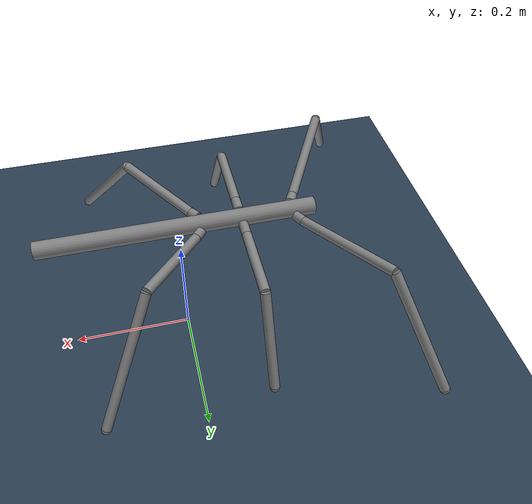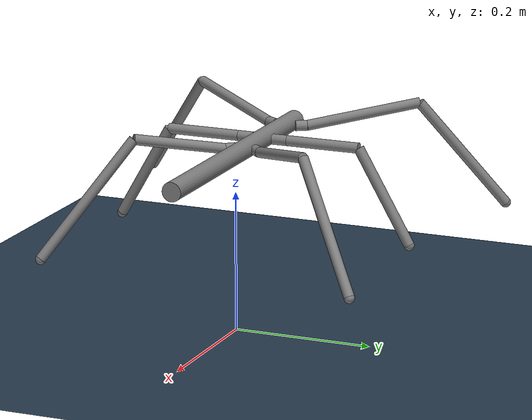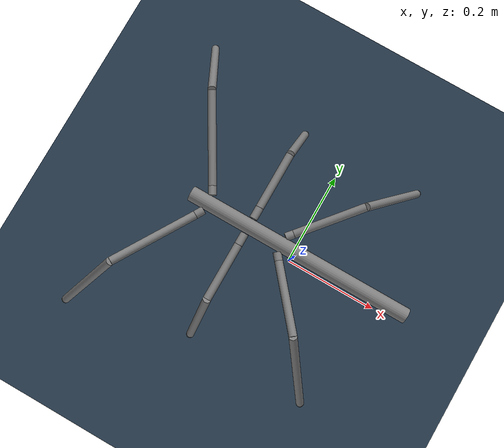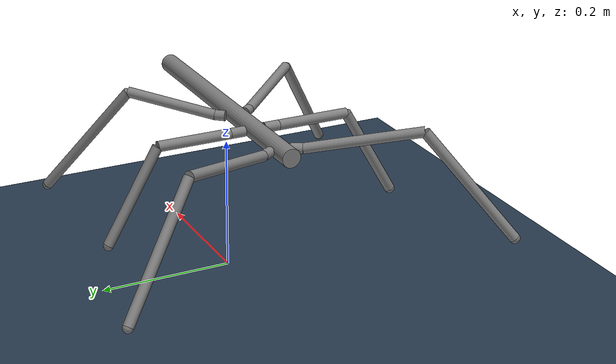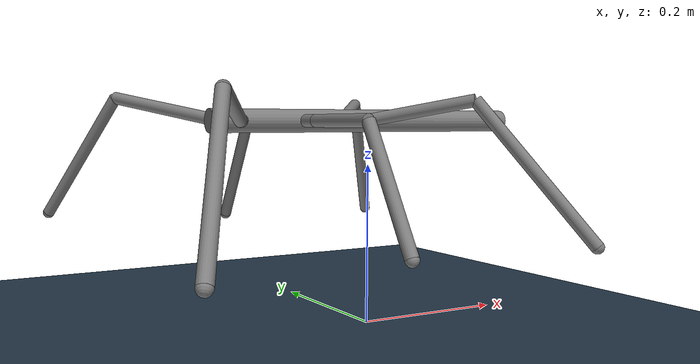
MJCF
<mujoco>
    <compiler meshdir="asset" texturedir="asset" />
    <statistic extent="1.5" meansize=".05" />

    <option timestep="0.005" jacobian="sparse" />

    <visual>
        <rgba haze="0.15 0.25 0.35 1" />
        <quality shadowsize="4096" />
        <map stiffness="700" shadowscale="0.5" fogstart="10" fogend="15" zfar="40" haze="0.3" />
    </visual>

    <asset>
        <texture type="skybox" builtin="gradient" rgb1="0.3 0.5 0.7" rgb2="0 0 0" width="512"
            height="512" />
        <texture name="texplane" type="2d" builtin="checker" rgb1=".2 .3 .4" rgb2=".1 0.15 0.2"
            width="512" height="512" mark="cross" markrgb=".8 .8 .8" />
        <material name="matplane" reflectance="0.3" texture="texplane" texrepeat="1 1"
            texuniform="true" />
    </asset>

    <worldbody>
        <body name="stick_insect_robot" pos="0 0 .03">
            <freejoint name="space" />
            <inertial pos="0.004237 -0.007339 0" mass="0.253323"
                diaginertia="0.01521 0.01521 9.453e-05" />

            <geom name="Stick_insect" size="0.01375 0.21325" pos="0 0 0.225002"
                quat="-0.5 -0.5 0.5 0.5"
                type="cylinder" contype="0" conaffinity="0" />
            <body name="COXA_R0" pos="-0.17975 0.014997 0.225" quat="0 1.73205e-07 3.26795e-07 1">
                <inertial pos="0.004237 -0.007339 0" mass="0.1"
                    diaginertia="0.00128 0.00128 0.00064" />
                <joint name="TR0" pos="0 0 0" axis="0 0 1" range="-1.74533 0.698132"
                    actuatorfrcrange="-6e+09 6e+09" />
                <geom name="COXA_R0" size="0.0075 0.008475" pos="0.004237 -0.007339 0"
                    quat="0.683005 0.68302 0.183015 0.18301" type="cylinder" contype="0"
                    conaffinity="0" />
                <body name="FEMUR_R0" pos="0.008475 -0.014679 -1e-06"
                    quat="-0.683012 -0.183011 0.683013 -0.183014">
                    <inertial pos="0.014378 -0.081542 -1e-06" mass="0.2926"
                        diaginertia="0.00374528 0.00374528 0.00187264" />
                    <joint name="CR0" pos="0 0 0" axis="0 0 1" range="-1.39626 1.0472"
                        actuatorfrcrange="-6e+09 6e+09" />
                    <geom name="FEMUR_R0" size="0.0075 0.0828" pos="0.014378 -0.081542 -1e-06"
                        quat="0.45452 -0.541675 0.454519 0.541675" type="cylinder" contype="0"
                        conaffinity="0" />
                    <body name="TIBIA_R0" pos="0.028756 -0.163084 -1e-06"
                        quat="0.996195 -2.01028e-07 3.10456e-07 0.0871551">
                        <inertial pos="-0.150745 -0.0870406 1e-06"
                            quat="0.353539 0.353539 0.612381 0.612381" mass="1.3539"
                            diaginertia="0.00751012 0.00524516 0.00488992" />
                        <joint name="FR0" pos="0 0 0" axis="0 0 1" range="-1.22173 0.698132"
                            actuatorfrcrange="-6e+09 6e+09" />
                        <geom name="TIBIA_R0" size="0.0075 0.100125" pos="-0.086705 -0.050063 1e-06"
                            quat="0.683008 -0.183029 0.683008 0.183029" type="cylinder" />
                        <geom name="FOOT_R0" size="0.0075" pos="-0.173409 -0.100127 1e-06"
                            quat="0.0944753 0.662691 -0.0871658 0.737778" />
                    </body>
                </body>
            </body>

            <body name="COXA_L0" pos="-0.17975 -0.015004 0.225" quat="-0.000172673 0 1 0">
                <inertial pos="0.004238 -0.00734 0" mass="0.1" diaginertia="0.00128 0.00128 0.00064" />
                <joint name="TL0" pos="0 0 0" axis="0 0 1" range="-1.74533 0.698132"
                    actuatorfrcrange="-6e+09 6e+09" />
                <geom name="COXA_L0" size="0.0075 0.008475" pos="0.004238 -0.00734 0"
                    quat="-0.183013 -0.183013 0.683013 0.683013" type="cylinder" contype="0"
                    conaffinity="0" />
                <body name="FEMUR_L0" pos="0.008475 -0.01468 0"
                    quat="0.183021 -0.683016 -0.183004 -0.68301">
                    <inertial pos="-0.014378 0.081542 0" mass="0.2926"
                        diaginertia="0.00374528 0.00374528 0.00187264" />
                    <joint name="CL0" pos="0 0 0" axis="0 0 1" range="-1.39626 1.0472"
                        actuatorfrcrange="-6e+09 6e+09" />
                    <geom name="FEMUR_L0" size="0.0075 0.0828" pos="-0.014378 0.081542 0"
                        quat="0.45452 -0.541675 0.454519 0.541675" type="cylinder" contype="0"
                        conaffinity="0" />
                    <body name="TIBIA_L0" pos="-0.028756 0.163084 0"
                        quat="-0.996195 2.66878e-07 6.99125e-07 -0.0871551">
                        <inertial pos="0.150754 0.0870357 1e-06"
                            quat="0.353553 0.353553 0.612373 0.612373" mass="1.3539"
                            diaginertia="0.00859011 0.00632515 0.00596992" />
                        <joint name="FL0" pos="0 0 0" axis="0 0 1" range="-1.22173 0.698132"
                            actuatorfrcrange="-6e+09 6e+09" />
                        <geom name="TIBIA_L0" size="0.0075 0.100125" pos="0.086712 0.050061 1e-06"
                            quat="0.683012 -0.183015 0.683012 0.183014" type="cylinder" />
                        <geom name="FOOT_L0" size="0.0075" pos="0.173418 0.100121 1e-06"
                            quat="-0.683013 0.183014 -0.683012 -0.183014" />
                    </body>
                </body>
            </body>

            <body name="COXA_R1" pos="-0.09725 0.014998 0.225" quat="0 1.73205e-07 3.26795e-07 1">
                <inertial pos="0 -0.01115 0" mass="0.1" diaginertia="0.00128 0.00128 0.00064" />
                <joint name="TR1" pos="0 0 0" axis="0 0 1" range="-1.22173 1.22173"
                    actuatorfrcrange="-6e+09 6e+09" />
                <geom name="COXA_R1" size="0.0075 0.01115" pos="0 -0.01115 0"
                    quat="0.7071 0.707114 1.08608e-07 3.53552e-07" type="cylinder" contype="0"
                    conaffinity="0" />
                <body name="FEMUR_R1" pos="0 -0.0223 0"
                    quat="-0.707106 2.42557e-06 0.707107 -2.42557e-06">
                    <inertial pos="0 -0.053926 0" mass="0.1906"
                        diaginertia="0.00243968 0.00243968 0.00121984" />
                    <joint name="CR1" pos="0 0 0" axis="0 0 1" range="-1.22173 1.22173"
                        actuatorfrcrange="-6e+09 6e+09" />
                    <geom name="FEMUR_R1" size="0.0075 0.053925" pos="0 -0.053926 0"
                        quat="0.5 -0.5 0.499999 0.5" type="cylinder" contype="0" conaffinity="0" />
                    <body name="TIBIA_R1" pos="0 -0.107851 0"
                        quat="1 -1.73205e-07 -1.73205e-07 3.26795e-07">
                        <inertial pos="-0.11837 -0.0683332 7.87216e-07"
                            quat="0.500017 -8.38036e-06 -1.45146e-05 0.866016" mass="1.2703"
                            diaginertia="0.0050643 0.00381984 0.00333438" />
                        <joint name="FR1" pos="0 0 0" axis="0 0 1" range="-1.39626 1.0472"
                            actuatorfrcrange="-6e+09 6e+09" />
                        <geom name="TIBIA_R1" size="0.0075 0.076475" pos="-0.066232 -0.038234 0"
                            quat="0.683017 -0.182997 0.683017 0.182997" type="cylinder" />
                        <geom name="FOOT_R1" size="0.0075" pos="-0.132463 -0.076469 1e-06"
                            quat="-0.182997 -0.683017 -0.182997 0.683017" />
                    </body>
                </body>
            </body>

            <body name="COXA_L1" pos="-0.097249 -0.015002 0.225"
                quat="-5e-07 -1 -1.73205e-07 3.26795e-07">
                <inertial pos="0 0.01115 0" mass="0.1" diaginertia="0.00128 0.00128 0.00064" />
                <joint name="TL1" pos="0 0 0" axis="0 0 1" range="-1.22173 1.22173"
                    actuatorfrcrange="-6e+09 6e+09" />
                <geom name="COXA_L1" size="0.0075 0.01115" pos="0 0.01115 0"
                    quat="0.707107 0.707107 -2.44949e-07 0" type="cylinder" contype="0"
                    conaffinity="0" />
                <body name="FEMUR_L1" pos="0 0.0223 0"
                    quat="-0.707106 9.52784e-06 0.707107 -8.82074e-06">
                    <inertial pos="0 0.053925 0" mass="0.1906"
                        diaginertia="0.00243968 0.00243968 0.00121984" />
                    <joint name="CL1" pos="0 0 0" axis="0 0 1" range="-1.22173 1.22173"
                        actuatorfrcrange="-6e+09 6e+09" />
                    <geom name="FEMUR_L1" size="0.0075 0.053925" pos="0 0.053925 0"
                        quat="0.5 -0.5 0.499999 0.5" type="cylinder" contype="0" conaffinity="0" />
                    <body name="TIBIA_L1" pos="0 0.10785 0"
                        quat="1 -1.73205e-07 -1.73205e-07 3.26795e-07">
                        <inertial pos="0.11871 0.068529 1.48077e-10" quat="0.500017 0 0 0.866016"
                            mass="1.2703" diaginertia="0.00508063 0.00381984 0.00335071" />
                        <joint name="FL1" pos="0 0 0" axis="0 0 1" range="-1.39626 1.0472"
                            actuatorfrcrange="-6e+09 6e+09" />
                        <geom name="TIBIA_L1" size="0.0075 0.076475" pos="0.066231 0.038233 0"
                            quat="0.683016 -0.182999 0.683016 0.183" type="cylinder" />
                        <geom name="FOOT_L1" size="0.0075" pos="0.132895 0.076718 1.88102e-10"
                            quat="-0.683016 0.182998 -0.683016 -0.183" />
                    </body>
                </body>
            </body>

            <body name="COXA_R2" pos="-0.032748 0.014996 0.224999"
                quat="0.001909 1.73829e-07 3.26464e-07 0.999998">
                <inertial pos="-0.004934 -0.005879 0" mass="0.1"
                    diaginertia="0.00128 0.00128 0.00064" />
                <joint name="TR2" pos="0 0 0" axis="0 0 1" range="-0.523599 1.91986"
                    actuatorfrcrange="-6e+09 6e+09" />
                <geom name="COXA_R2" size="0.0075 0.007675" pos="-0.004934 -0.005879 0"
                    quat="-0.664457 -0.664469 0.241847 0.241842" type="cylinder" contype="0"
                    conaffinity="0" />
                <body name="FEMUR_R2" pos="-0.009867 -0.011759 0"
                    quat="-0.664463 0.241847 0.664463 0.241842">
                    <inertial pos="0.011487 -0.065145 0" mass="0.2338"
                        diaginertia="0.00299264 0.00299264 0.00149632" />
                    <joint name="CR2" pos="0 0 0" axis="0 0 1" range="-1.39626 1.0472"
                        actuatorfrcrange="-6e+09 6e+09" />
                    <geom name="FEMUR_R2" size="0.0075 0.06615" pos="0.011487 -0.065145 0"
                        quat="0.454519 -0.541676 0.454519 0.541676" type="cylinder" contype="0"
                        conaffinity="0" />
                    <body name="TIBIA_R2" pos="0.022974 -0.13029 0"
                        quat="0.996195 3.40647e-07 -1.44064e-07 0.0871561">
                        <inertial pos="-0.157195 -0.09074 0"
                            quat="0.353579 0.353579 0.612357 0.612357"
                            mass="1.3709" diaginertia="0.0080875 0.00571374 0.00510752" />
                        <joint name="FR2" pos="0 0 0" axis="0 0 1" range="-1.39626 1.0472"
                            actuatorfrcrange="-6e+09 6e+09" />
                        <geom name="TIBIA_R2" size="0.0075 0.10495" pos="-0.090893 -0.052468 0"
                            quat="0.68302 -0.182987 0.68302 0.182986" type="cylinder" />
                        <geom name="FOOT_R2" size="0.0075" pos="-0.181786 -0.104935 0"
                            quat="0.182986 0.68302 0.182986 -0.68302" />
                    </body>
                </body>
            </body>

            <body name="COXA_L2" pos="-0.032749 -0.015004 0.225"
                quat="-4.99375e-07 -0.999998 0.00190883 3.27749e-07">
                <inertial pos="0.004934 0.005879 0" mass="0.1" diaginertia="0.00128 0.00128 0.00064" />
                <joint name="TL2" pos="0 0 0" axis="0 0 1" range="-0.523599 1.91986"
                    actuatorfrcrange="-6e+09 6e+09" />
                <geom name="COXA_L2" size="0.0075 0.007675" pos="0.004934 0.005879 0"
                    quat="-0.664453 -0.664473 0.241849 0.241841" type="cylinder" contype="0"
                    conaffinity="0" />
                <body name="FEMUR_L2" pos="0.009867 0.011759 0"
                    quat="-0.664462 0.241843 0.664464 0.241847">
                    <inertial pos="-0.011487 0.065145 0" mass="0.2338"
                        diaginertia="0.00299264 0.00299264 0.00149632" />
                    <joint name="CL2" pos="0 0 0" axis="0 0 1" range="-1.39626 1.0472"
                        actuatorfrcrange="-6e+09 6e+09" />
                    <geom name="FEMUR_L2" size="0.0075 0.06615" pos="-0.011487 0.065145 0"
                        quat="0.454519 -0.541675 0.454519 0.541675" type="cylinder" contype="0"
                        conaffinity="0" />
                    <body name="TIBIA_L2" pos="-0.022974 0.13029 0"
                        quat="-0.996195 3.10456e-07 2.01028e-07 -0.0871556">
                        <inertial pos="0.157193 0.0907439 0"
                            quat="0.353566 0.353566 0.612365 0.612365"
                            mass="1.3709" diaginertia="0.00808748 0.00571372 0.00510752" />
                        <joint name="FL2" pos="0 0 0" axis="0 0 1" range="-1.39626 1.0472"
                            actuatorfrcrange="-6e+09 6e+09" />
                        <geom name="TIBIA_L2" size="0.0075 0.10495" pos="0.090893 0.052469 0"
                            quat="0.683017 -0.182998 0.683017 0.182999" type="cylinder" />
                        <geom name="FOOT_L2" size="0.0075" pos="0.181784 0.10494 0"
                            quat="-0.683017 0.182998 -0.683016 -0.182999" />
                    </body>
                </body>
            </body>
        </body>

        <light directional="true" diffuse=".4 .4 .4" specular="0.1 0.1 0.1" pos="0 0 5.0"
            dir="0 0 -1" castshadow="false" />
        <light directional="true" diffuse=".6 .6 .6" specular="0.2 0.2 0.2" pos="0 0 4" dir="0 0 -1" />

        <geom name="ground" type="plane" size="0 0 1" pos="0 0 0" quat="1 0 0 0" material="matplane"
            condim="1" />
        <body mocap="true" pos="-.1 .05 0" zaxis=".5 0 1">
        </body>
    </worldbody>

    <actuator>
        <motor name="space" joint="space" />
        <position name="TR0" joint="TR0" kp="3" kv="0.01" />
        <position name="CR0" joint="CR0" kp="3" kv="0.01" />
        <position name="FR0" joint="FR0" kp="3" kv="0.01" />
        <position name="TL0" joint="TL0" kp="3" kv="0.01" />
        <position name="CL0" joint="CL0" kp="3" kv="0.01" />
        <position name="FL0" joint="FL0" kp="3" kv="0.01" />
        <position name="TR1" joint="TR1" kp="3" kv="0.01" />
        <position name="CR1" joint="CR1" kp="3" kv="0.01" />
        <position name="FR1" joint="FR1" kp="3" kv="0.01" />
        <position name="TL1" joint="TL1" kp="3" kv="0.01" />
        <position name="CL1" joint="CL1" kp="3" kv="0.01" />
        <position name="FL1" joint="FL1" kp="3" kv="0.01" />
        <position name="TR2" joint="TR2" kp="3" kv="0.01" />
        <position name="CR2" joint="CR2" kp="3" kv="0.01" />
        <position name="FR2" joint="FR2" kp="3" kv="0.01" />
        <position name="TL2" joint="TL2" kp="3" kv="0.01" />
        <position name="CL2" joint="CL2" kp="3" kv="0.01" />
        <position name="FL2" joint="FL2" kp="3" kv="0.01" />
    </actuator>

</mujoco>
